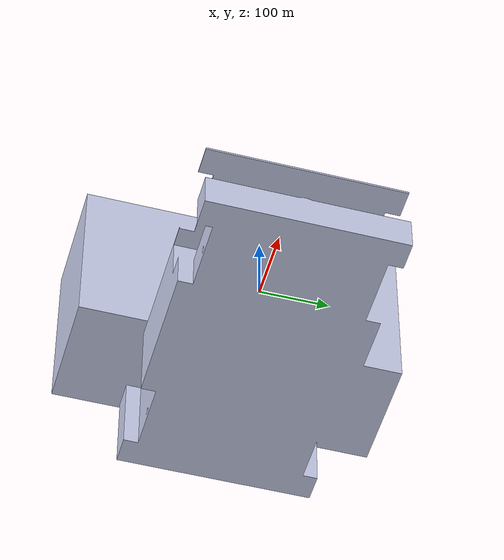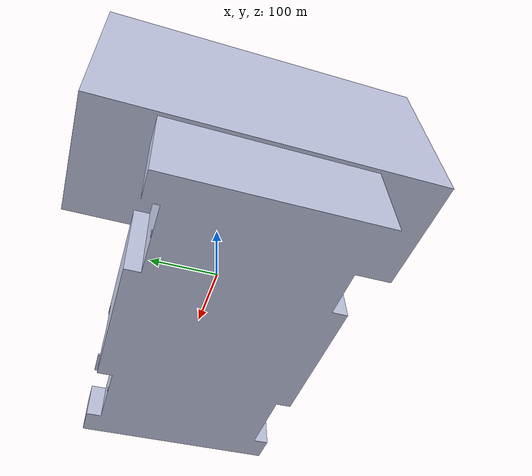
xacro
<?xml version="1.0"?>
<robot xmlns:xacro="http://www.ros.org/wiki/xacro" name="car_urdf">
    <xacro:arg name="initial_positions_file" default="initial_positions.yaml" />

    <!-- Import car_urdf urdf file -->
    <xacro:include filename="$(find car_description)/urdf/car_urdf.urdf" />

    <!-- Import control_xacro -->
    <xacro:include filename="car_urdf.ros2_control.xacro" />

    <xacro:car_urdf_ros2_control name="FakeSystem" initial_positions_file="$(arg initial_positions_file)"/>

</robot>

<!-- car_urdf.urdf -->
<robot
  name="car_urdf">

  <link name="base_footprint" />
  <joint name="joint_name" type="fixed">
    <origin xyz="0.0 0.0 0.097" rpy="0.0 0.0 0.0"/>
    <parent link="base_footprint"/>
    <child link="base_link"/>
    <axis xyz="0.0 0.0 0.0"/>
    <limit lower="0.0" upper="0.0" effort="0.0" velocity="0.0"/>
  </joint>

  <link
    name="base_link">
    <inertial>
      <origin
        xyz="0.00320323422954568 -1.33498790682185E-16 0.000993542681876572"
        rpy="0 0 0" />
      <mass
        value="0.860602941105724" />
      <inertia
        ixx="0.0104898977549483"
        ixy="2.20647979160319E-17"
        ixz="-0.000175424794449365"
        iyy="0.0174665757413704"
        iyz="5.60490727413283E-18"
        izz="0.0278001426316638" />
    </inertial>
    <visual>
      <origin
        xyz="0 0 0"
        rpy="0 0 0" />
      <geometry>
        <mesh
          filename="package://car_description/meshes/base_link.STL" />
      </geometry>
      <material
        name="">
        <color
          rgba="0.792156862745098 0.819607843137255 0.933333333333333 1" />
      </material>
    </visual>
    <collision>
      <origin
        xyz="0 0 0"
        rpy="0 0 0" />
      <geometry>
        <mesh
          filename="package://car_description/meshes/base_link.STL" />
      </geometry>
    </collision>
  </link>
  <link
    name="battery_link">
    <inertial>
      <origin
        xyz="1.7789E-18 4.2912E-17 0.0455"
        rpy="0 0 0" />
      <mass
        value="3.2508" />
      <inertia
        ixx="0.0073132"
        ixy="-7.9939E-19"
        ixz="8.7519E-19"
        iyy="0.021752"
        iyz="-2.1276E-19"
        izz="0.025058" />
    </inertial>
    <visual>
      <origin
        xyz="0 0 0"
        rpy="0 0 0" />
      <geometry>
        <mesh
          filename="package://car_description/meshes/battery_link.STL" />
      </geometry>
      <material
        name="">
        <color
          rgba="1 1 1 1" />
      </material>
    </visual>
    <collision>
      <origin
        xyz="0 0 0"
        rpy="0 0 0" />
      <geometry>
        <mesh
          filename="package://car_description/meshes/battery_link.STL" />
      </geometry>
    </collision>
  </link>
  <joint
    name="battery_joint"
    type="fixed">
    <origin
      xyz="0 0 0"
      rpy="0 0 0" />
    <parent
      link="base_link" />
    <child
      link="battery_link" />
    <axis
      xyz="0 0 0" />
  </joint>
  <link
    name="L_wheel_link">
    <inertial>
      <origin
        xyz="-8.6723E-20 -0.00030855 1.3161E-17"
        rpy="0 0 0" />
      <mass
        value="3.8671" />
      <inertia
        ixx="0.0081998"
        ixy="1.6625E-18"
        ixz="2.4652E-32"
        iyy="0.014115"
        iyz="-8.5827E-19"
        izz="0.0081998" />
    </inertial>
    <visual>
      <origin
        xyz="0 0 0"
        rpy="0 0 0" />
      <geometry>
        <mesh
          filename="package://car_description/meshes/L_wheel_link.STL" />
      </geometry>
      <material
        name="">
        <color
          rgba="0.89804 0.91765 0.92941 1" />
      </material>
    </visual>
    <collision>
      <origin xyz="0 0 0" rpy="1.5708 0 0"/>
      <geometry>
        <cylinder radius="0.097" length="0.044"/>
      </geometry>
    </collision>
  </link>
  <joint
    name="L_wheel_joint"
    type="continuous">
    <origin
      xyz="0 0.143 0"
      rpy="0 0 0" />
    <parent
      link="base_link" />
    <child
      link="L_wheel_link" />
    <axis
      xyz="0 -1 0" />
  </joint>
  <link
    name="R_wheel_link">
    <inertial>
      <origin
        xyz="1.385E-17 0.00030855 4.7538E-18"
        rpy="0 0 0" />
      <mass
        value="3.8671" />
      <inertia
        ixx="0.0081998"
        ixy="1.562E-18"
        ixz="1.2866E-18"
        iyy="0.014115"
        iyz="-9.7497E-19"
        izz="0.0081998" />
    </inertial>
    <visual>
      <origin
        xyz="0 0 0"
        rpy="0 0 0" />
      <geometry>
        <mesh
          filename="package://car_description/meshes/R_wheel_link.STL" />
      </geometry>
      <material
        name="">
        <color
          rgba="0.89804 0.91765 0.92941 1" />
      </material>
    </visual>
    <collision>
      <origin xyz="0 0 0" rpy="1.5708 0 0"/>
      <geometry>
        <cylinder radius="0.097" length="0.044"/>
      </geometry>
    </collision>
  </link>
  <joint
    name="R_wheel_joint"
    type="continuous">
    <origin
      xyz="0 -0.143 0"
      rpy="0 0 0" />
    <parent
      link="base_link" />
    <child
      link="R_wheel_link" />
    <axis
      xyz="0 1 0" />
  </joint>
  <link
    name="front_shell_link">
    <inertial>
      <origin
        xyz="0.15936 -0.0062883 0.075774"
        rpy="0 0 0" />
      <mass
        value="0.6554" />
      <inertia
        ixx="0.023896"
        ixy="-5.4864E-05"
        ixz="0.00078448"
        iyy="0.0074984"
        iyz="-6.9315E-05"
        izz="0.024579" />
    </inertial>
    <visual>
      <origin
        xyz="0 0 0"
        rpy="0 0 0" />
      <geometry>
        <mesh
          filename="package://car_description/meshes/front_shell_link.STL" />
      </geometry>
      <material
        name="">
        <color
          rgba="1 1 1 1" />
      </material>
    </visual>
    <collision>
      <origin
        xyz="0 0 0"
        rpy="0 0 0" />
      <geometry>
        <mesh
          filename="package://car_description/meshes/front_shell_link.STL" />
      </geometry>
    </collision>
  </link>
  <joint
    name="front_shell_joint"
    type="fixed">
    <origin
      xyz="0 0 0"
      rpy="0 0 0" />
    <parent
      link="base_link" />
    <child
      link="front_shell_link" />
    <axis
      xyz="0 0 0" />
  </joint>
  <link
    name="back_shell_link">
    <inertial>
      <origin
        xyz="-0.16922 0.00011316 0.077014"
        rpy="0 0 0" />
      <mass
        value="0.6953" />
      <inertia
        ixx="0.024817"
        ixy="-2.8403E-06"
        ixz="-0.00080187"
        iyy="0.0080182"
        iyz="5.0086E-06"
        izz="0.025755" />
    </inertial>
    <visual>
      <origin
        xyz="0 0 0"
        rpy="0 0 0" />
      <geometry>
        <mesh
          filename="package://car_description/meshes/back_shell_link.STL" />
      </geometry>
      <material
        name="">
        <color
          rgba="0.79216 0.81961 0.93333 1" />
      </material>
    </visual>
    <collision>
      <origin
        xyz="0 0 0"
        rpy="0 0 0" />
      <geometry>
        <mesh
          filename="package://car_description/meshes/back_shell_link.STL" />
      </geometry>
    </collision>
  </link>
  <joint
    name="back_shell_joint"
    type="fixed">
    <origin
      xyz="0 0 0"
      rpy="0 0 0" />
    <parent
      link="base_link" />
    <child
      link="back_shell_link" />
    <axis
      xyz="0 0 0" />
  </joint>
  <link
    name="camera_1_link">
    <inertial>
      <origin
        xyz="8.1954E-05 -0.00028874 3.6488E-05"
        rpy="0 0 0" />
      <mass
        value="0.064282" />
      <inertia
        ixx="7.5434E-05"
        ixy="1.6431E-07"
        ixz="7.0898E-07"
        iyy="6.2277E-06"
        iyz="7.3154E-08"
        izz="7.4157E-05" />
    </inertial>
    <visual>
      <origin
        xyz="0 0 0"
        rpy="0 0 0" />
      <geometry>
        <mesh
          filename="package://car_description/meshes/camera_1_link.STL" />
      </geometry>
      <material
        name="">
        <color
          rgba="0.79216 0.81961 0.93333 1" />
      </material>
    </visual>
    <collision>
      <origin
        xyz="0 0 0"
        rpy="0 0 0" />
      <geometry>
        <mesh
          filename="package://car_description/meshes/camera_1_link.STL" />
      </geometry>
    </collision>
  </link>
  <joint
    name="camera_1_joint"
    type="fixed">
    <origin
      xyz="0.22558272211562 0 0.133506936243468"
      rpy="0 0 0" />
    <parent
      link="base_link" />
    <child
      link="camera_1_link" />
    <axis
      xyz="0 0 0" />
  </joint>
  <link
    name="middle_shell_link">
    <inertial>
      <origin
        xyz="0.000969337821784328 2.73647386484321E-17 -0.00682267336944603"
        rpy="0 0 0" />
      <mass
        value="0.376095918062654" />
      <inertia
        ixx="0.00259446606580798"
        ixy="-1.28900084245828E-18"
        ixz="-1.73445712265835E-06"
        iyy="0.00534753991743343"
        iyz="5.95880677624065E-20"
        izz="0.00787333036863502" />
    </inertial>
    <visual>
      <origin
        xyz="0 0 0"
        rpy="0 0 0" />
      <geometry>
        <mesh
          filename="package://car_description/meshes/middle_shell_link.STL" />
      </geometry>
      <material
        name="">
        <color
          rgba="1 1 1 1" />
      </material>
    </visual>
    <collision>
      <origin
        xyz="0 0 0"
        rpy="0 0 0" />
      <geometry>
        <mesh
          filename="package://car_description/meshes/middle_shell_link.STL" />
      </geometry>
    </collision>
  </link>
  <joint
    name="middle_shell_joint"
    type="fixed">
    <origin
      xyz="0 0 0.1705"
      rpy="0 0 0" />
    <parent
      link="base_link" />
    <child
      link="middle_shell_link" />
    <axis
      xyz="0 0 0" />
  </joint>
  <link
    name="pole_link">
    <inertial>
      <origin
        xyz="-1.65168928915213E-16 -4.47895159743383E-16 0.015"
        rpy="0 0 0" />
      <mass
        value="0.00657378262763664" />
      <inertia
        ixx="5.46548396275853E-07"
        ixy="4.19729537385296E-24"
        ixz="1.34286253854513E-22"
        iyy="5.46548396275853E-07"
        iyz="-1.07439027386358E-23"
        izz="1.07029398406209E-07" />
    </inertial>
    <visual>
      <origin
        xyz="0 0 0"
        rpy="0 0 0" />
      <geometry>
        <mesh
          filename="package://car_description/meshes/pole_link.STL" />
      </geometry>
      <material
        name="">
        <color
          rgba="0.792156862745098 0.819607843137255 0.933333333333333 1" />
      </material>
    </visual>
    <collision>
      <origin
        xyz="0 0 0"
        rpy="0 0 0" />
      <geometry>
        <mesh
          filename="package://car_description/meshes/pole_link.STL" />
      </geometry>
    </collision>
  </link>
  <joint
    name="pole_joint"
    type="fixed">
    <origin
      xyz="0 0 0.1705"
      rpy="0 0 0" />
    <parent
      link="base_link" />
    <child
      link="pole_link" />
    <axis
      xyz="0 0 1" />
  </joint>
  <link
    name="up_shell_link">
    <inertial>
      <origin
        xyz="-0.0315368738282728 1.35959383780015E-05 0.104690617879912"
        rpy="0 0 0" />
      <mass
        value="12.2073193122489" />
      <inertia
        ixx="0.197877212417593"
        ixy="2.26852012189753E-05"
        ixz="-0.000255416017912581"
        iyy="0.230725635152107"
        iyz="-2.77873309272919E-06"
        izz="0.423346801636743" />
    </inertial>
    <visual>
      <origin
        xyz="0 0 0"
        rpy="0 0 0" />
      <geometry>
        <mesh
          filename="package://car_description/meshes/up_shell_link.STL" />
      </geometry>
      <material
        name="">
        <color
          rgba="1 1 1 1" />
      </material>
    </visual>
    <collision>
      <origin
        xyz="0 0 0"
        rpy="0 0 0" />
      <geometry>
        <mesh
          filename="package://car_description/meshes/up_shell_link.STL" />
      </geometry>
    </collision>
  </link>
  <joint
    name="up_shell_joint"
    type="fixed">
    <origin
      xyz="0.0320000000000001 0 0.2655"
      rpy="0 0 0" />
    <parent
      link="base_link" />
    <child
      link="up_shell_link" />
    <axis
      xyz="0 0 0" />
  </joint>
  <link
    name="laser_link">
    <inertial>
      <origin
        xyz="2.77555756156289E-17 -9.55395358154788E-18 0.000358152290849761"
        rpy="0 0 0" />
      <mass
        value="0.04345685683984" />
      <inertia
        ixx="9.62182434682205E-06"
        ixy="3.31181369985737E-22"
        ixz="-1.09810176213793E-21"
        iyy="9.85744379584129E-06"
        iyz="1.38737857788138E-21"
        izz="1.29679835130781E-05" />
    </inertial>
    <visual>
      <origin
        xyz="0 0 0.02"
        rpy="0 0 0" />
      <geometry>
        <mesh
          filename="package://car_description/meshes/laser_link.STL" />
      </geometry>
      <material
        name="">
        <color
          rgba="0.792156862745098 0.819607843137255 0.933333333333333 1" />
      </material>
    </visual>
    <collision>
      <origin
        xyz="0 0 0.02"
        rpy="0 0 0" />
      <geometry>
        <mesh
          filename="package://car_description/meshes/laser_link.STL" />
      </geometry>
    </collision>
  </link>
  <joint
    name="laser_joint"
    type="fixed">
    <origin
      xyz="0.155 0 0.1855"
      rpy="0 0 0" />
    <parent
      link="base_link" />
    <child
      link="laser_link" />
    <axis
      xyz="0 0 0" />
  </joint>
  <link
    name="camera_2_link">
    <inertial>
      <origin
        xyz="0.000124399806426922 -8.44546897417403E-18 -0.000124399806426895"
        rpy="0 0 0" />
      <mass
        value="0.0381519652811453" />
      <inertia
        ixx="2.39612842680205E-05"
        ixy="-1.02141989031991E-20"
        ixz="-1.60496116422842E-07"
        iyy="2.90337016636915E-06"
        iyz="2.61005640882919E-21"
        izz="2.39612842680205E-05" />
    </inertial>
    <visual>
      <origin
        xyz="0 0 0"
        rpy="0 0 0" />
      <geometry>
        <mesh
          filename="package://car_description/meshes/camera_2_link.STL" />
      </geometry>
      <material
        name="">
        <color
          rgba="0.792156862745098 0.819607843137255 0.933333333333333 1" />
      </material>
    </visual>
    <collision>
      <origin
        xyz="0 0 0"
        rpy="0 0 0" />
      <geometry>
        <mesh
          filename="package://car_description/meshes/camera_2_link.STL" />
      </geometry>
    </collision>
  </link>
  <joint
    name="camera_2_joint"
    type="fixed">
    <origin
      xyz="0.221039844882851 0 0.221610912694716"
      rpy="0 0 0" />
    <parent
      link="base_link" />
    <child
      link="camera_2_link" />
    <axis
      xyz="0 0 0" />
  </joint>
  <link
    name="imu_link">
    <inertial>
      <origin
        xyz="-0.00065518143323752 -5.54786416247958E-17 -0.000852753977875459"
        rpy="0 0 0" />
      <mass
        value="0.025385853403519" />
      <inertia
        ixx="3.65343505659845E-06"
        ixy="1.73064892585256E-23"
        ixz="2.17562603229941E-07"
        iyy="3.58016658204556E-06"
        iyz="-6.45223175811331E-23"
        izz="3.72739982627189E-06" />
    </inertial>
    <visual>
      <origin
        xyz="0 0 0"
        rpy="0 0 0" />
      <geometry>
        <mesh
          filename="package://car_description/meshes/imu_link.STL" />
      </geometry>
      <material
        name="">
        <color
          rgba="0.792156862745098 0.819607843137255 0.933333333333333 1" />
      </material>
    </visual>
    <collision>
      <origin
        xyz="0 0 0"
        rpy="0 0 0" />
      <geometry>
        <mesh
          filename="package://car_description/meshes/imu_link.STL" />
      </geometry>
    </collision>
  </link>
  <joint
    name="imu_joint"
    type="fixed">
    <origin
      xyz="0.0320000000000001 0 0.2205"
      rpy="0 0 0" />
    <parent
      link="base_link" />
    <child
      link="imu_link" />
    <axis
      xyz="0 0 0" />
  </joint>

  <link name="F_caster_link">
    <visual name="">
      <origin xyz="0.0 0.0 0.0" rpy="0.0 0.0 0.0"/>
      <geometry>
        <sphere radius="0.02"/>
      </geometry>
      <material name="gray">
        <color rgba="0.5 0.5 0.5 1.0"/>
      </material>
    </visual>
    <collision>
      <origin xyz="0.0 0.0 0.0" rpy="0.0 0.0 0.0"/>
      <geometry>
        <sphere radius="0.02"/>
      </geometry>
    </collision>
    <inertial>
    <origin xyz="0 0 0"/>
    <mass value="0.005"/>
    <inertia ixx="8e-7" ixy="0" ixz="0"
             iyy="8e-7" iyz="0"
             izz="8e-7"/>
    </inertial>
  </link>

  <joint name="F_caster_joint" type="fixed">
    <origin xyz="0.2 0.0 -0.0765" rpy="0.0 0.0 0.0"/>
    <parent link="base_link"/>
    <child link="F_caster_link"/>
  </joint>

  <link name="B_caster_link">
    <visual name="">
      <origin xyz="0.0 0.0 0.0" rpy="0.0 0.0 0.0"/>
      <geometry>
        <sphere radius="0.02"/>
      </geometry>
      <material name="gray">
        <color rgba="0.5 0.5 0.5 1.0"/>
      </material>
    </visual>
    <collision>
      <origin xyz="0.0 0.0 0.0" rpy="0.0 0.0 0.0"/>
      <geometry>
        <sphere radius="0.02"/>
      </geometry>
    </collision>
    <inertial>
    <origin xyz="0 0 0"/>
    <mass value="0.005"/>
    <inertia ixx="8e-7" ixy="0" ixz="0"
             iyy="8e-7" iyz="0"
             izz="8e-7"/>
    </inertial>
  </link>

  <joint name="B_caster_joint" type="fixed">
    <origin xyz="-0.2 0.0 -0.0765" rpy="0.0 0.0 0.0"/>
    <parent link="base_link"/>
    <child link="B_caster_link"/>
  </joint>

  <ros2_control name="GazeboSystem" type="system">
    <hardware>
      <plugin>gazebo_ros2_control/GazeboSystem</plugin>
    </hardware>

    <joint name="L_wheel_joint">
      <command_interface name="velocity" />
      <state_interface name="position" />
      <state_interface name="velocity" />
    </joint>

    <joint name="R_wheel_joint">
      <command_interface name="velocity" />
      <state_interface name="position" />
      <state_interface name="velocity" />
    </joint>
  </ros2_control>

  <gazebo>
    <plugin name="gazebo_ros2_control" filename="libgazebo_ros2_control.so">
      <robot_param>robot_description</robot_param>
      <robot_param_node>robot_state_publisher</robot_param_node>
      <parameters>$(find car_description)/config/controllers.yaml</parameters>
      <!-- 添加话题映射 -->
      <ros>
        <remapping>/diff_drive_controller/cmd_vel_unstamped:=/cmd_vel</remapping>
        <remapping>/diff_drive_controller/odom:=/odom</remapping>
        <remapping>/dynamic_states:=/car/dynamic_states</remapping>
      </ros>
    </plugin>
  </gazebo>

  <gazebo reference="L_wheel_link">
    <mu1>1.0</mu1>
    <mu2>1.0</mu2>
  </gazebo>

  <gazebo reference="R_wheel_link">
    <mu1>1.0</mu1>
    <mu2>1.0</mu2>
  </gazebo>

  <gazebo reference="F_caster_link">
    <mu1>0.001</mu1>
    <mu2>0.001</mu2>
  </gazebo>

  <gazebo reference="B_caster_link">
    <mu1>0.001</mu1>
    <mu2>0.001</mu2>
  </gazebo>

  <gazebo reference="laser_link">  <!-- 将 "laser_link" 替换为你的雷达link名称 -->
  <sensor name="laserscan" type="gpu_ray">
    <!-- 基本设置 -->
    <always_on>true</always_on>      <!-- 是否始终开启 -->
    <visualize>true</visualize>      <!-- 在Gazebo中可视化射线 -->
    <update_rate>10</update_rate>    <!-- 更新频率 (Hz) -->
    <pose>0 0 0 0 0 0</pose>         <!-- 传感器相对link的位姿偏移 -->

    <!-- 射线参数 -->
    <ray>
      <!-- 水平扫描参数 -->
      <scan>
        <horizontal>
          <samples>360</samples>        <!-- 采样点数 -->
          <resolution>1.0</resolution>  <!-- 分辨率，通常为1 -->
          <min_angle>0.349</min_angle>    <!-- 起始角度 (rad)，0通常指正前方 -->
          <max_angle>5.934</max_angle><!-- 结束角度 (rad)，2*pi为360度 -->
        </horizontal>
      </scan>
      <!-- 测距范围 -->
      <range>
        <min>0.12</min>  <!-- 最小测量距离 (m) -->
        <max>8.0</max>   <!-- 最大测量距离 (m) -->
        <resolution>0.015</resolution> <!-- 距离分辨率 (m) -->
      </range>
      <!-- 噪声模型 -->
      <noise>
        <type>gaussian</type> <!-- 高斯噪声 -->
        <mean>0.0</mean>       <!-- 均值 -->
        <stddev>0.01</stddev>  <!-- 标准差 -->
      </noise>
    </ray>

    <!-- ROS插件配置 -->
    <plugin name="gazebo_ros_laser_controller" filename="libgazebo_ros_ray_sensor.so">
      <ros>
        <namespace>/</namespace>                        <!-- ROS命名空间 -->
        <remapping>~/out:=scan</remapping>              <!-- 话题重映射，输出到/scan -->
      </ros>
      <output_type>sensor_msgs/LaserScan</output_type> <!-- 消息类型 -->
      <frame_name>laser_link</frame_name>              <!-- 数据对应的坐标系 -->
    </plugin>

  </sensor>
  </gazebo>
</robot>
